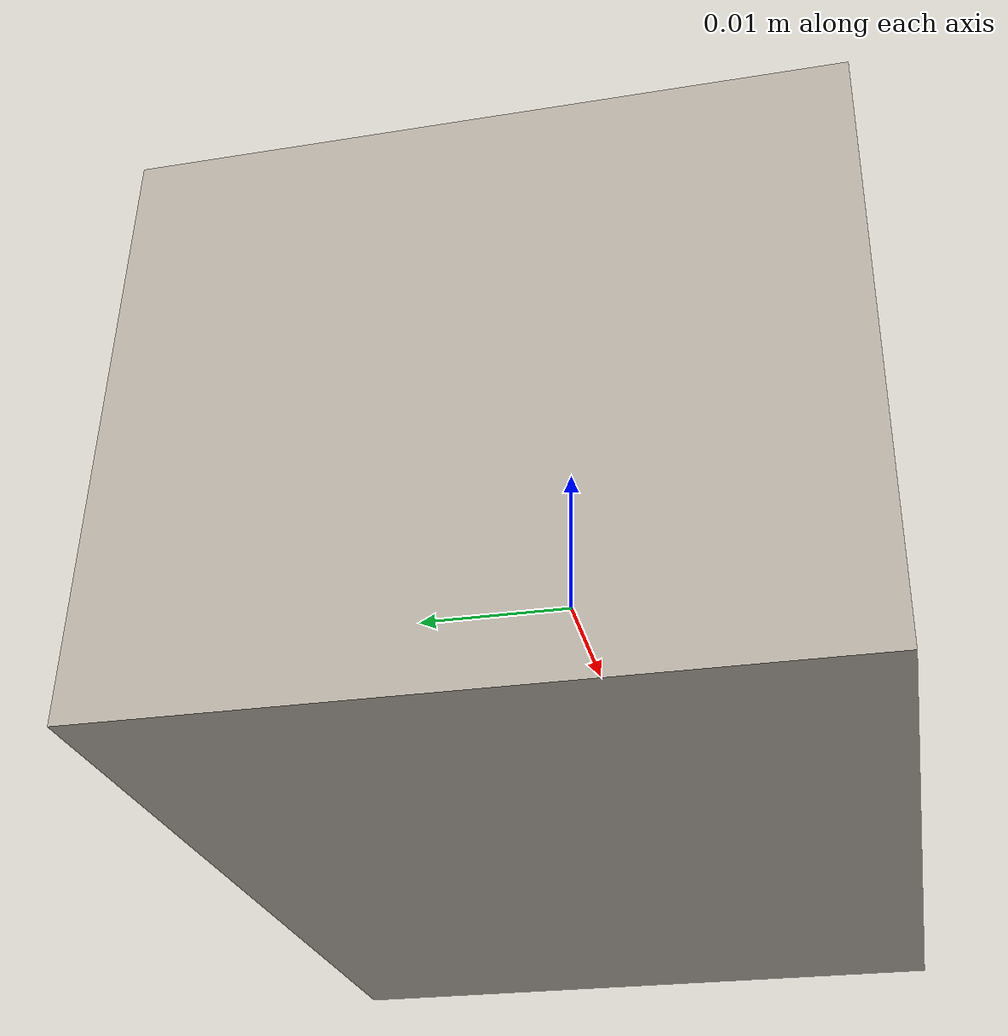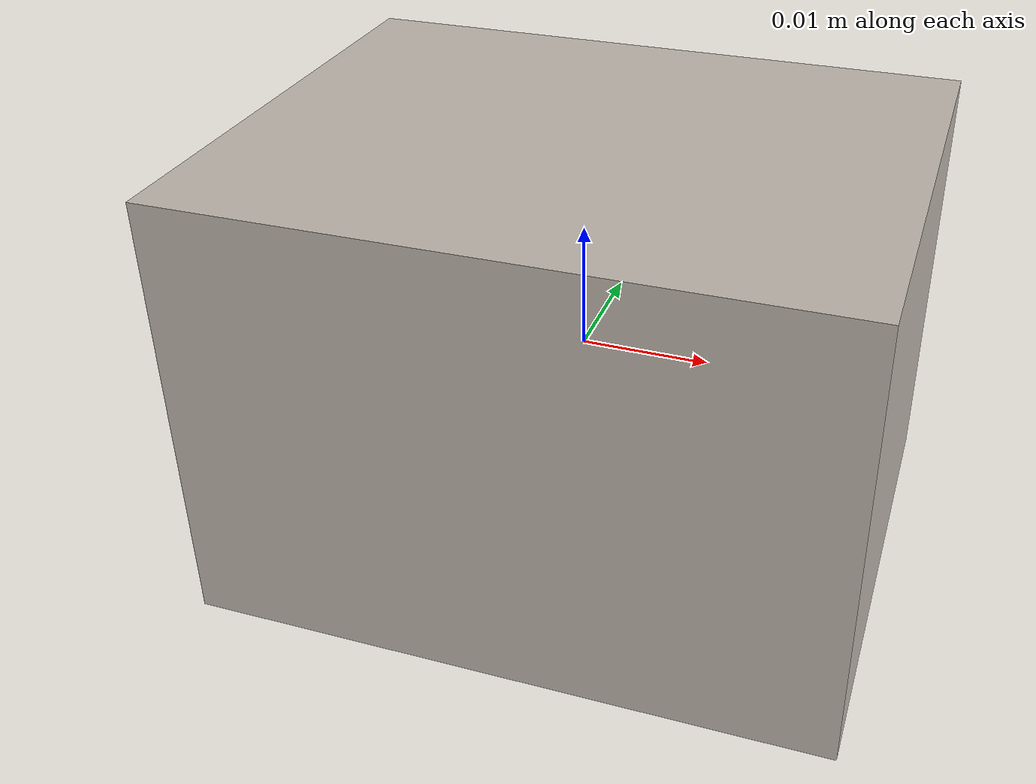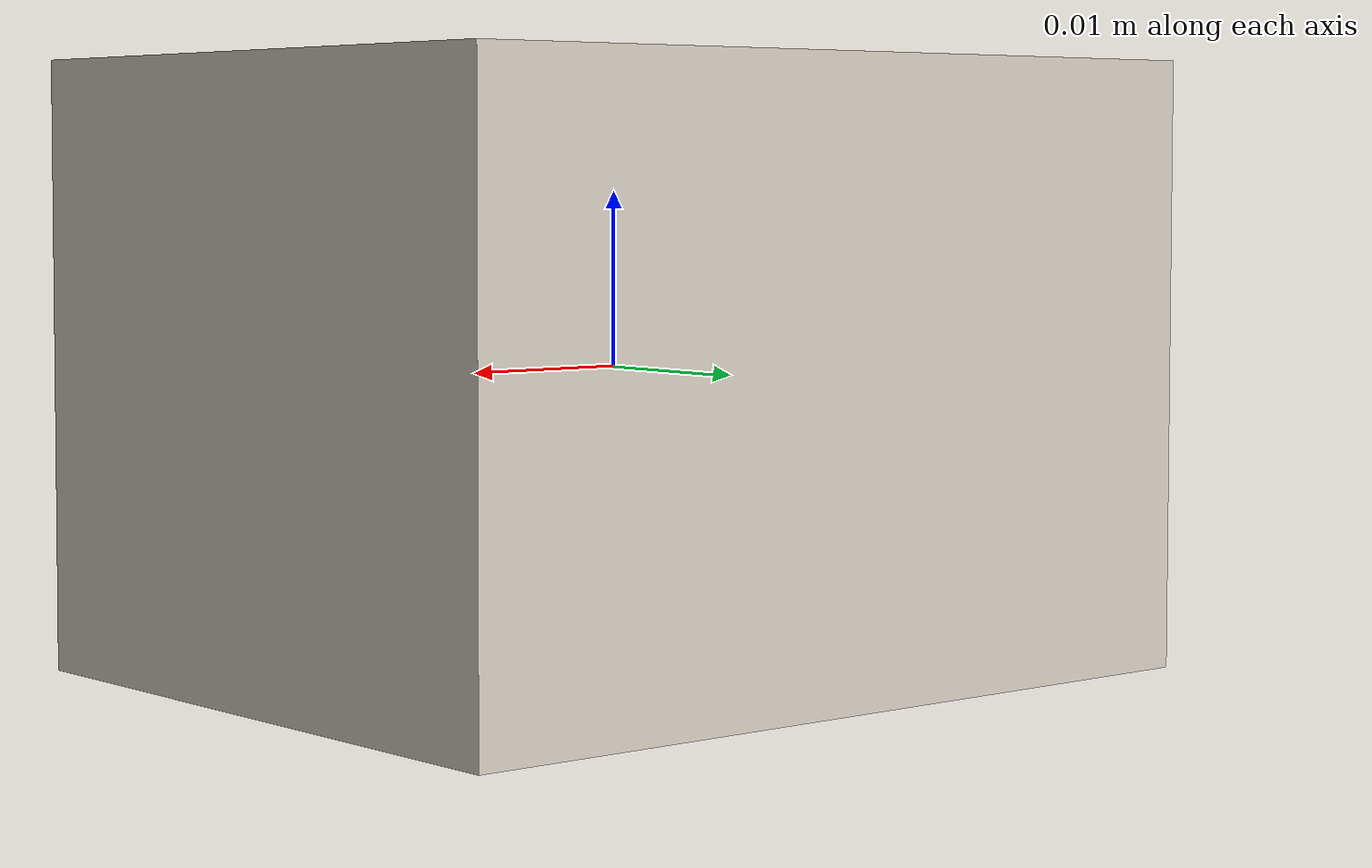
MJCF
<mujoco model="altoid">
  <asset>
    <texture type="cube" file="textures/smallboxes/altoid.png" rgb1="1 1 1" name="tex-altoid"/>
    <material name="altoid" reflectance="0.5" texrepeat="3 3" texture="tex-altoid" texuniform="false"/>
  </asset>
  <worldbody>
    <body>
      <body name="collision">
        <geom pos="0 0 0" size="0.025 0.02 0.0175" type="box" solimp="0.998 0.998 0.001" solref="0.001 1" density="150" friction="0.95 0.3 0.1" material="altoid" group="1" condim="4"/>
      </body>
      <site rgba="0 0 0 0" size="0.005" pos="0 0 -0.05" name="bottom_site"/>
      <site rgba="0 0 0 0" size="0.005" pos="0 0 0.03" name="top_site"/>
      <site rgba="0 0 0 0" size="0.005" pos="0.06 0.06 0" name="horizontal_radius_site"/>
    </body>
  </worldbody>
</mujoco>
